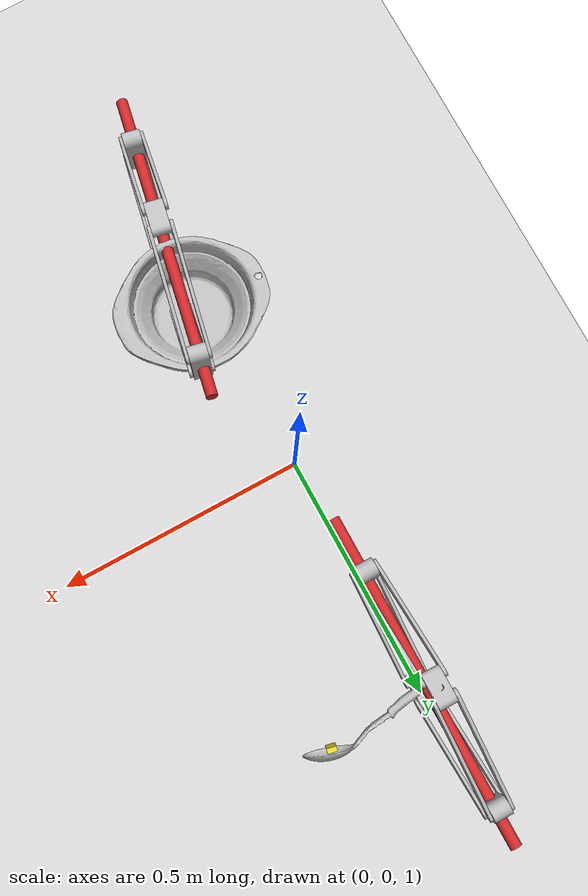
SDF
<?xml version='1.0'?>
<sdf version="1.6">
    <world name="big_bowl_serving_spoon_v">

        <include>
            <uri>model://sun</uri>
        </include>

        <include>
            <uri>model://ground_plane</uri>
        </include>

        <include>
            <uri>model://b_serving_spoon</uri>
            <pose>0.112572 0.508131 0.984633 1.382835 0.015399 0.080779</pose>
        </include>

        <include>
            <uri>model://butter_box</uri>
            <pose>0.198795 0.509112 0.981783 3.036336 1.368174 -1.866245</pose>
            <plugin name="stick" filename="libStickPlugin.so">
              <parentLinkName>link</parentLinkName>
              <childLinkName>b_serving_spoon::link</childLinkName>
              <force>5</force>
            </plugin>
        </include>

        <include>
            <uri>model://b_big_bowl</uri>
            <pose>0.024164 -0.383989 0.959287 -0.017186 -0.000884 -0.101566</pose>
        </include>

        <!-- Left Gripper -->
        <include>
            <uri>model://gripper</uri>
            <name>left_ee</name>
            <pose>0 0.5 1 0 -1.57 0</pose>

            <plugin name="l_force_controller" filename="libvelocity_controller_plugin.so">
              <linkName>link</linkName>
              <topicName>set_l_ee_twist</topicName>
              <gains>
                <linear>
                  <P>100.0</P>
                  <I>0.0</I>
                  <D>25.0</D>
                </linear>
                <angular>
                  <P>100.0</P>
                  <I>0.0</I>
                  <D>25.0</D>
                </angular>
              </gains>
            </plugin>

            <plugin name="l_grip" filename="libGripPlugin.so">
              <parentLinkName>link</parentLinkName>
              <childLinkName>b_serving_spoon::link</childLinkName>
              <relativePose>0.112571612 0.00813051871955 -0.0153673645109 1.3828344221275815 0.015398730956486372 0.08077832485708741</relativePose>
            </plugin>

        </include>

        <!-- Right Gripper -->
        <include>
            <uri>model://gripper</uri>
            <name>right_ee</name>
            <pose>0 -0.5 1 1.547368 1.402341 1.343703</pose>

            <plugin name="r_force_controller" filename="libvelocity_controller_plugin.so">
              <linkName>link</linkName>
              <topicName>set_r_ee_twist</topicName>
              <gains>
                <linear>
                  <P>100.0</P>
                  <I>0.0</I>
                  <D>25.0</D>
                </linear>
                <angular>
                  <P>100.0</P>
                  <I>0.0</I>
                  <D>25.0</D>
                </angular>
              </gains>
            </plugin>

            <plugin name="r_grip" filename="libGripPlugin.so">
              <parentLinkName>link</parentLinkName>
              <childLinkName>b_big_bowl::link</childLinkName>
              <relativePose>0.06 0.11 0 -1.57 -1.35 1.3</relativePose>
            </plugin>

        </include>

        <plugin name="feature_visualization_plugin" filename="libgiskard_visualization_plugin.so"></plugin>

        <gui>
            <camera name='user_camera'>
                <pose>1.700789 1.175709 1.670612 0 0.375643 -2.675000</pose>
                <view_controller>orbit</view_controller>
            </camera>
        </gui>

    </world>
</sdf>

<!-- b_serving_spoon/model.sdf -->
<sdf version='1.6'>
	<model name='b_serving_spoon'>
		<static>false</static>
		<pose>0 0 0 0 0 0</pose>

		<link name='link'>
			<inertial>
			<mass>0.15</mass>
			<pose>0.0019638 -6.1791e-05 0.00018857 0 0 0</pose>
				<inertia>
					<ixx>0.0000075</ixx>
					<iyy>0.00112875</iyy>
					<izz>0.00112875</izz>
				</inertia>
			</inertial>
			<sensor name="tool_contact_sensor" type="contact">
				<always_on>true</always_on>
				<update_rate>30.0</update_rate>
				<contact>
					<collision>collision</collision>
				</contact>
				<plugin name="tool_bumper" filename="libgazebo_ros_bumper.so">
					<bumperTopicName>tool_contact_sensor_state</bumperTopicName>
					<frameName>world</frameName>
				</plugin>
			</sensor>
			<collision name='collision'>
				<geometry>
					<mesh>
						<uri>model://b_serving_spoon/b_serving_spoon.dae</uri>
					</mesh>
				</geometry>
				<surface>
					<friction>
						<ode>
							<mu>0.2</mu>
							<mu2>0.2</mu2>
						</ode>
					</friction>
				</surface>
			</collision>
			<visual name='visual'>
				<geometry>
					<mesh>
						<uri>model://b_serving_spoon/b_serving_spoon.dae</uri>
					</mesh>
				</geometry>
			</visual>
		</link>
	</model>
</sdf>

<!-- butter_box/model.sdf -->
<sdf version='1.6'>
    <model name='butter_box'>
        <static>false</static>
        <pose>0 0 0 0 0 0</pose>
        <link name='link'>
            <pose>0 0 0 0 0 0</pose>
            <inertial>
                <mass>0.001</mass>
                <pose>0 0 0 0 0 0</pose>
                <inertia>
                    <ixx>0.00000004167</ixx>
                    <iyy>0.00000008333</iyy>
                    <izz>0.00000010833</izz>
                    <ixy>0</ixy>
                    <ixz>0</ixz>
                    <iyz>0</iyz>
                </inertia>
            </inertial>
            <collision name='collision'>
                <geometry>
                    <box>
                        <size>0.03 0.02 0.01</size>
                    </box>
                </geometry>
                <surface>
                    <friction>
                        <ode>
                            <mu>0.2</mu>
                            <mu2>0.2</mu2>
                        </ode>
                    </friction>
                </surface>
            </collision>
            <visual name='visual'>
                <geometry>
                    <box>
                        <size>0.03 0.02 0.01</size>
                    </box>
                </geometry>
                <material>
                    <script>
                        <name>Gazebo/Yellow</name>
                        <uri>file://media/materials/scripts/gazebo.material</uri>
                    </script>
                </material>
            </visual>
        </link>
    </model>
</sdf>

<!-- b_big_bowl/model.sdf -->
<sdf version='1.6'>
	<model name='b_big_bowl'>
		<static>false</static>
		<pose>0 0 0 0 0 0</pose>

		<link name='link'>
			<inertial>
			<mass>0.35</mass>
			<pose>-0.0022966 -0.0039142 0.0041527 0 0 0</pose>
				<inertia>
					<ixx>0.0009479167</ixx>
					<iyy>0.0009479167</iyy>
					<izz>0.00175</izz>
				</inertia>
			</inertial>
			<collision name='collision'>
				<geometry>
					<mesh>
						<uri>model://b_big_bowl/b_big_bowl.dae</uri>
					</mesh>
				</geometry>
				<surface>
					<friction>
						<ode>
							<mu>0.2</mu>
							<mu2>0.2</mu2>
						</ode>
					</friction>
				</surface>
			</collision>
			<visual name='visual'>
				<geometry>
					<mesh>
						<uri>model://b_big_bowl/b_big_bowl.dae</uri>
					</mesh>
				</geometry>
			</visual>
		</link>
	</model>
</sdf>

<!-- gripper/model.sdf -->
<sdf version="1.6">
  <model name='gripper'>
    <static>False</static>
    <link name='left_long_joint'>
      <pose>0 0.25 0.019 -1.57 0 0</pose>
      <inertial>
        <pose>-0.000104 -0.000077 -0.0 0 0 0</pose>
        <mass>0.3186</mass>
        <inertia>
          <ixx>7.938e-05</ixx>
          <ixy>0</ixy>
          <ixz>0</ixz>
          <iyy>3.3715e-04</iyy>
          <iyz>0</iyz>
          <izz>3.3664e-04</izz>
        </inertia>
      </inertial>
      <collision name="collision">
        <geometry>
          <mesh>
            <uri>model://gripper/meshes/joint_long.dae</uri>
            <scale>1 1 1</scale>
          </mesh>
        </geometry>
        <surface>
          <contact>
            <collide_bitmask>0xffff</collide_bitmask>
          </contact>
          <friction>
            <ode>
              <mu>100</mu>
              <mu2>50</mu2>
            </ode>
          </friction>
        </surface>
      </collision>
      <visual name='visual'>
        <geometry>
          <mesh>
            <uri>model://gripper/meshes/joint_long.dae</uri>
            <scale>1 1 1</scale>
          </mesh>
        </geometry>
      </visual>
    </link>
    <link name='right_long_joint'>
      <pose>0 -0.25 0.019 -1.57 0 0</pose>
      <collision name="collision">
        <geometry>
          <mesh>
            <uri>model://gripper/meshes/joint_long.dae</uri>
            <scale>1 1 1</scale>
          </mesh>
        </geometry>
        <surface>
          <contact>
            <collide_bitmask>0xffff</collide_bitmask>
          </contact>
          <friction>
            <ode>
              <mu>100</mu>
              <mu2>50</mu2>
            </ode>
          </friction>
        </surface>
      </collision>
      <visual name='visual'>
        <geometry>
          <mesh>
            <uri>model://gripper/meshes/joint_long.dae</uri>
            <scale>1 1 1</scale>
          </mesh>
        </geometry>
      </visual>
      <inertial>
        <pose>-0.000104 -0.000077 -0.0 0 0 0</pose>
        <mass>0.3186</mass>
        <inertia>
          <ixx>7.938e-05</ixx>
          <ixy>0</ixy>
          <ixz>0</ixz>
          <iyy>3.3715e-04</iyy>
          <iyz>0</iyz>
          <izz>3.3664e-04</izz>
        </inertia>
      </inertial>
    </link>
    <link name='left_short_joint'>
      <pose>0.14 0 0 1.57 0 1.57</pose>
      <collision name="collision">
        <geometry>
          <mesh>
            <uri>model://gripper/meshes/joint_short.dae</uri>
            <scale>1 1 1</scale>
          </mesh>
        </geometry>
        <surface>
          <contact>
            <collide_bitmask>0xffff</collide_bitmask>
          </contact>
          <friction>
            <ode>
              <mu>100</mu>
              <mu2>50</mu2>
            </ode>
          </friction>
        </surface>
      </collision>
      <visual name='visual'>
        <geometry>
          <mesh>
            <uri>model://gripper/meshes/joint_short.dae</uri>
            <scale>1 1 1</scale>
          </mesh>
        </geometry>
      </visual>
      <inertial>
        <pose>0.0 0.01896 -0.000157 0 0 0</pose>
        <mass>0.1512</mass>
        <inertia>
          <ixx>2.689e-05</ixx>
          <ixy>-0</ixy>
          <ixz>-0</ixz>
          <iyy>6.696e-05</iyy>
          <iyz>0</iyz>
          <izz>7.741e-05</izz>
        </inertia>
      </inertial>
    </link>
    <link name='right_short_joint'>
      <pose>-0.14 0 0 1.57 0 1.57</pose>
      <collision name="collision">
        <geometry>
          <mesh>
            <uri>model://gripper/meshes/joint_short.dae</uri>
            <scale>1 1 1</scale>
          </mesh>
        </geometry>
        <surface>
          <contact>
            <collide_bitmask>0xffff</collide_bitmask>
          </contact>
          <friction>
            <ode>
              <mu>100</mu>
              <mu2>50</mu2>
            </ode>
          </friction>
        </surface>
      </collision>
      <visual name='visual'>
        <geometry>
          <mesh>
            <uri>model://gripper/meshes/joint_short.dae</uri>
            <scale>1 1 1</scale>
          </mesh>
        </geometry>
      </visual>
      <inertial>
        <pose>0.0 0.01896 -0.000157 0 0 0</pose>
        <mass>0.1512</mass>
        <inertia>
          <ixx>2.689e-05</ixx>
          <ixy>-0</ixy>
          <ixz>-0</ixz>
          <iyy>6.696e-05</iyy>
          <iyz>0</iyz>
          <izz>7.741e-05</izz>
        </inertia>
      </inertial>
    </link>
    <link name='flat_plate1'>
      <pose>0.0456 0.2565 0.038 1.57 0 -1.132</pose>
      <collision name="collision">
        <geometry>
          <mesh>
            <uri>model://gripper/meshes/flat_plate.dae</uri>
            <scale>1 1 1</scale>
          </mesh>
        </geometry>
        <surface>
          <contact>
            <collide_bitmask>0xffff</collide_bitmask>
          </contact>
          <friction>
            <ode>
              <mu>100</mu>
              <mu2>50</mu2>
            </ode>
          </friction>
        </surface>
      </collision>
      <visual name='visual'>
        <geometry>
          <mesh>
            <uri>model://gripper/meshes/flat_plate.dae</uri>
            <scale>1 1 1</scale>
          </mesh>
        </geometry>
      </visual>
      <inertial>
        <pose>0.125 0.00325 0.012500 0 0 0</pose>
        <mass>0.0651</mass>
        <inertia>
          <ixx>3.689e-06</ixx>
          <ixy>-0</ixy>
          <ixz>-0</ixz>
          <iyy>3.797e-04</iyy>
          <iyz>0</iyz>
          <izz>3.764e-04</izz>
        </inertia>
      </inertial>
    </link>
    <link name='flat_plate2'>
      <pose>-0.1289 -0.02 0.038 1.57 0 -1.132</pose>
      <collision name="collision">
        <geometry>
          <mesh>
            <uri>model://gripper/meshes/flat_plate.dae</uri>
            <scale>1 1 1</scale>
          </mesh>
        </geometry>
        <surface>
          <contact>
            <collide_bitmask>0xffff</collide_bitmask>
          </contact>
          <friction>
            <ode>
              <mu>100</mu>
              <mu2>50</mu2>
            </ode>
          </friction>
        </surface>
      </collision>
      <visual name='visual'>
        <geometry>
          <mesh>
            <uri>model://gripper/meshes/flat_plate.dae</uri>
            <scale>1 1 1</scale>
          </mesh>
        </geometry>
      </visual>
      <inertial>
        <pose>0.125 0.00325 0.012500 0 0 0</pose>
        <mass>0.0651</mass>
        <inertia>
          <ixx>3.689e-06</ixx>
          <ixy>-0</ixy>
          <ixz>-0</ixz>
          <iyy>3.797e-04</iyy>
          <iyz>0</iyz>
          <izz>3.764e-04</izz>
        </inertia>
      </inertial>
    </link>
    <link name='flat_plate3'>
      <pose>-0.1515 0.031 0.038 1.57 0 1.132</pose>
      <collision name="collision">
        <geometry>
          <mesh>
            <uri>model://gripper/meshes/flat_plate.dae</uri>
            <scale>1 1 1</scale>
          </mesh>
        </geometry>
        <surface>
          <contact>
            <collide_bitmask>0xffff</collide_bitmask>
          </contact>
          <friction>
            <ode>
              <mu>100</mu>
              <mu2>50</mu2>
            </ode>
          </friction>
        </surface>
      </collision>
      <visual name='visual'>
        <geometry>
          <mesh>
            <uri>model://gripper/meshes/flat_plate.dae</uri>
            <scale>1 1 1</scale>
          </mesh>
        </geometry>
      </visual>
      <inertial>
        <pose>0.125 0.00325 0.012500 0 0 0</pose>
        <mass>0.0651</mass>
        <inertia>
          <ixx>3.689e-06</ixx>
          <ixy>-0</ixy>
          <ixz>-0</ixz>
          <iyy>3.797e-04</iyy>
          <iyz>0</iyz>
          <izz>3.764e-04</izz>
        </inertia>
      </inertial>
    </link>
    <link name='flat_plate4'>
      <pose>0.022 -0.245 0.038 1.57 0 1.132</pose>
      <collision name="collision">
        <geometry>
          <mesh>
            <uri>model://gripper/meshes/flat_plate.dae</uri>
            <scale>1 1 1</scale>
          </mesh>
        </geometry>
        <surface>
          <contact>
            <collide_bitmask>0xffff</collide_bitmask>
          </contact>
          <friction>
            <ode>
              <mu>100</mu>
              <mu2>50</mu2>
            </ode>
          </friction>
        </surface>
      </collision>
      <visual name='visual'>
        <geometry>
          <mesh>
            <uri>model://gripper/meshes/flat_plate.dae</uri>
            <scale>1 1 1</scale>
          </mesh>
        </geometry>
      </visual>
      <inertial>
        <pose>0.125 0.00325 0.012500 0 0 0</pose>
        <mass>0.0651</mass>
        <inertia>
          <ixx>3.689e-06</ixx>
          <ixy>-0</ixy>
          <ixz>-0</ixz>
          <iyy>3.797e-04</iyy>
          <iyz>0</iyz>
          <izz>3.764e-04</izz>
        </inertia>
      </inertial>
    </link>

    <link name='flat_plate5'>
      <pose>0.0456 0.2565 -0.007 1.57 0 -1.132</pose>
      <collision name="collision">
        <geometry>
          <mesh>
            <uri>model://gripper/meshes/flat_plate.dae</uri>
            <scale>1 1 1</scale>
          </mesh>
        </geometry>
        <surface>
          <contact>
            <collide_bitmask>0xffff</collide_bitmask>
          </contact>
          <friction>
            <ode>
              <mu>100</mu>
              <mu2>50</mu2>
            </ode>
          </friction>
        </surface>
      </collision>
      <visual name='visual'>
        <geometry>
          <mesh>
            <uri>model://gripper/meshes/flat_plate.dae</uri>
            <scale>1 1 1</scale>
          </mesh>
        </geometry>
      </visual>
      <inertial>
        <pose>0.125 0.00325 0.012500 0 0 0</pose>
        <mass>0.0651</mass>
        <inertia>
          <ixx>3.689e-06</ixx>
          <ixy>-0</ixy>
          <ixz>-0</ixz>
          <iyy>3.797e-04</iyy>
          <iyz>0</iyz>
          <izz>3.764e-04</izz>
        </inertia>
      </inertial>
    </link>
    <link name='flat_plate6'>
      <pose>-0.1289 -0.02 -0.007 1.57 0 -1.132</pose>
      <collision name="collision">
        <geometry>
          <mesh>
            <uri>model://gripper/meshes/flat_plate.dae</uri>
            <scale>1 1 1</scale>
          </mesh>
        </geometry>
        <surface>
          <contact>
            <collide_bitmask>0xffff</collide_bitmask>
          </contact>
          <friction>
            <ode>
              <mu>100</mu>
              <mu2>50</mu2>
            </ode>
          </friction>
        </surface>
      </collision>
      <visual name='visual'>
        <geometry>
          <mesh>
            <uri>model://gripper/meshes/flat_plate.dae</uri>
            <scale>1 1 1</scale>
          </mesh>
        </geometry>
      </visual>
      <inertial>
        <pose>0.125 0.00325 0.012500 0 0 0</pose>
        <mass>0.0651</mass>
        <inertia>
          <ixx>3.689e-06</ixx>
          <ixy>-0</ixy>
          <ixz>-0</ixz>
          <iyy>3.797e-04</iyy>
          <iyz>0</iyz>
          <izz>3.764e-04</izz>
        </inertia>
      </inertial>
    </link>
    <link name='flat_plate7'>
      <pose>-0.1515 0.031 -0.007 1.57 0 1.132</pose>
      <collision name="collision">
        <geometry>
          <mesh>
            <uri>model://gripper/meshes/flat_plate.dae</uri>
            <scale>1 1 1</scale>
          </mesh>
        </geometry>
        <surface>
          <contact>
            <collide_bitmask>0xffff</collide_bitmask>
          </contact>
          <friction>
            <ode>
              <mu>100</mu>
              <mu2>50</mu2>
            </ode>
          </friction>
        </surface>
      </collision>
      <visual name='visual'>
        <geometry>
          <mesh>
            <uri>model://gripper/meshes/flat_plate.dae</uri>
            <scale>1 1 1</scale>
          </mesh>
        </geometry>
      </visual>
      <inertial>
        <pose>0.125 0.00325 0.012500 0 0 0</pose>
        <mass>0.0651</mass>
        <inertia>
          <ixx>3.689e-06</ixx>
          <ixy>-0</ixy>
          <ixz>-0</ixz>
          <iyy>3.797e-04</iyy>
          <iyz>0</iyz>
          <izz>3.764e-04</izz>
        </inertia>
      </inertial>
    </link>
    <link name='flat_plate8'>
      <pose>0.022 -0.245 -0.007 1.57 0 1.132</pose>
      <collision name="collision">
        <geometry>
          <mesh>
            <uri>model://gripper/meshes/flat_plate.dae</uri>
            <scale>1 1 1</scale>
          </mesh>
        </geometry>
        <surface>
          <contact>
            <collide_bitmask>0xffff</collide_bitmask>
          </contact>
          <friction>
            <ode>
              <mu>100</mu>
              <mu2>50</mu2>
            </ode>
          </friction>
        </surface>
      </collision>
      <visual name='visual'>
        <geometry>
          <mesh>
            <uri>model://gripper/meshes/flat_plate.dae</uri>
            <scale>1 1 1</scale>
          </mesh>
        </geometry>
      </visual>
      <inertial>
        <pose>0.125 0.00325 0.012500 0 0 0</pose>
        <mass>0.0651</mass>
        <inertia>
          <ixx>3.689e-06</ixx>
          <ixy>-0</ixy>
          <ixz>-0</ixz>
          <iyy>3.797e-04</iyy>
          <iyz>0</iyz>
          <izz>3.764e-04</izz>
        </inertia>
      </inertial>
    </link>

    <link name='screw_rod'>
      <pose>-0.00015 -0.02 0.0153 0 1.57 1.57 </pose>
      <collision name="collision">
        <geometry>
          <cylinder>
            <radius>0.012</radius>
            <length>1</length>
          </cylinder>
        </geometry>
      </collision>
      <visual name="visual">
        <material>
          <script>
            <name>Gazebo/Red</name>
            <uri>file://media/materials/scripts/gazebo.material</uri>
          </script>
          <shader type='pixel'/>
        </material>
        <geometry>
          <cylinder>
            <radius>0.012</radius>
            <length>0.7</length>
          </cylinder>
        </geometry>
      </visual>
      <inertial>
        <pose>0 0 0.32263 0 1.57 0</pose>
        <mass>1.29</mass>
        <inertia>
          <ixx>1.8357e-04</ixx>
          <ixy>-0</ixy>
          <ixz>-0</ixz>
          <iyy>8.006e-02</iyy>
          <iyz>0</iyz>
          <izz>8.006e-02</izz>
        </inertia>
      </inertial>
    </link>

    <joint name="j1" type="revolute">
      <pose> 0.25 0 0.01 0 0 0</pose>
      <child>flat_plate1</child>
      <parent>left_short_joint</parent>
      <axis>
        <limit>
          <lower>-0.5</lower>
          <upper>0.1</upper>
        </limit>
        <xyz>0 1 0</xyz>
      </axis>
    </joint>
    <joint name="j2" type="revolute">
      <pose> 0 0 0.01 0 0 0</pose>
      <child>flat_plate1</child>
      <parent>left_long_joint</parent>
      <axis>
        <limit>
          <lower>-0.5</lower>
          <upper>0.1</upper>
        </limit>
        <xyz>0 1 0</xyz>
      </axis>
    </joint>
    <joint name="j3" type="revolute">
      <pose> 0 0 0.01 0 0 0</pose>
      <child>flat_plate2</child>
      <parent>right_short_joint</parent>
      <axis>
        <limit>
          <lower>-0.5</lower>
          <upper>0.1</upper>
        </limit>
        <xyz>0 1 0</xyz>
      </axis>
    </joint>
    <joint name="j4" type="revolute">
      <pose> 0.25 0 0.01 0 0 0</pose>
      <child>flat_plate2</child>
      <parent>right_long_joint</parent>
      <axis>
        <limit>
          <lower>-0.5</lower>
          <upper>0.1</upper>
        </limit>
        <xyz>0 1 0</xyz>
      </axis>
    </joint>
    <joint name="j5" type="revolute">
      <pose> 0 0 0.01 0 0 0</pose>
      <child>flat_plate3</child>
      <parent>right_short_joint</parent>
      <axis>
        <limit>
          <lower>-0.5</lower>
          <upper>0.1</upper>
        </limit>
        <xyz>0 1 0</xyz>
      </axis>
    </joint>
    <joint name="j6" type="revolute">
      <pose> 0.25 0 0.01 0 0 0</pose>
      <child>flat_plate3</child>
      <parent>left_long_joint</parent>
      <axis>
        <limit>
          <lower>-0.5</lower>
          <upper>0.1</upper>
        </limit>
        <xyz>0 1 0</xyz>
      </axis>
    </joint>
    <joint name="j7" type="revolute">
      <pose> 0.25 0 0.01 0 0 0</pose>
      <child>flat_plate4</child>
      <parent>left_short_joint</parent>
      <axis>
        <limit>
          <lower>-0.5</lower>
          <upper>0.1</upper>
        </limit>
        <xyz>0 1 0</xyz>
      </axis>
    </joint>
    <joint name="j8" type="revolute">
      <pose> 0 0 0.01 0 0 0</pose>
      <child>flat_plate4</child>
      <parent>right_long_joint</parent>
      <axis>
        <limit>
          <lower>-0.5</lower>
          <upper>0.1</upper>
        </limit>
        <xyz>0 1 0</xyz>
      </axis>
    </joint>

    <joint name="j9" type="revolute">
      <pose> 0.25 0 0.01 0 0 0</pose>
      <child>flat_plate5</child>
      <parent>left_short_joint</parent>
      <axis>
        <limit>
          <lower>-0.5</lower>
          <upper>0.1</upper>
        </limit>
        <xyz>0 -1 0</xyz>
      </axis>
    </joint>
    <joint name="j10" type="revolute">
      <pose> 0 0 0.01 0 0 0</pose>
      <child>flat_plate5</child>
      <parent>left_long_joint</parent>
      <axis>
        <limit>
          <lower>-0.5</lower>
          <upper>0.1</upper>
        </limit>
        <xyz>0 -1 0</xyz>
      </axis>
    </joint>
    <joint name="j11" type="revolute">
      <pose> 0 0 0.01 0 0 0</pose>
      <child>flat_plate6</child>
      <parent>right_short_joint</parent>
      <axis>
        <limit>
          <lower>-0.5</lower>
          <upper>0.1</upper>
        </limit>
        <xyz>0 -1 0</xyz>
      </axis>
    </joint>
    <joint name="j12" type="revolute">
      <pose> 0.25 0 0.01 0 0 0</pose>
      <child>flat_plate6</child>
      <parent>right_long_joint</parent>
      <axis>
        <limit>
          <lower>-0.5</lower>
          <upper>0.1</upper>
        </limit>
        <xyz>0 -1 0</xyz>
      </axis>
    </joint>
    <joint name="j13" type="revolute">
      <pose> 0 0 0.01 0 0 0</pose>
      <child>flat_plate7</child>
      <parent>right_short_joint</parent>
      <axis>
        <limit>
          <lower>-0.5</lower>
          <upper>0.1</upper>
        </limit>
        <xyz>0 -1 0</xyz>
      </axis>
    </joint>
    <joint name="j14" type="revolute">
      <pose> 0.25 0 0.01 0 0 0</pose>
      <child>flat_plate7</child>
      <parent>left_long_joint</parent>
      <axis>
        <limit>
          <lower>-0.5</lower>
          <upper>0.1</upper>
        </limit>
        <xyz>0 -1 0</xyz>
      </axis>
    </joint>
    <joint name="j15" type="revolute">
      <pose> 0.25 0 0.01 0 0 0</pose>
      <child>flat_plate8</child>
      <parent>left_short_joint</parent>
      <axis>
        <limit>
          <lower>-0.5</lower>
          <upper>0.1</upper>
        </limit>
        <xyz>0 -1 0</xyz>
      </axis>
    </joint>
    <joint name="j16" type="revolute">
      <pose> 0 0 0.01 0 0 0</pose>
      <child>flat_plate8</child>
      <parent>right_long_joint</parent>
      <axis>
        <limit>
          <lower>-0.5</lower>
          <upper>0.1</upper>
        </limit>
        <xyz>0 -1 0</xyz>
      </axis>
    </joint>
    <joint name="piston_joint_1" type ="screw">
      <pose>0 0.004 0 0 0 0</pose>
      <parent>screw_rod</parent>
      <child>right_long_joint</child>
      <axis>
        <xyz>0 1 0</xyz>
      </axis>
      <thread_pitch>100</thread_pitch>
    </joint>

    <joint name="piston_joint_2" type ="screw">
      <pose>0 0.004 0 0 0 0</pose>
      <parent>screw_rod</parent>
      <child>left_long_joint</child>
      <axis>
        <xyz>0 1 0</xyz>
      </axis>
      <thread_pitch>-100</thread_pitch>
    </joint>

    <plugin name="gripper_plugin" filename="libiarc_gripper_plugin.so">
      <namespace>firefly</namespace>
      <link_name>screw_rod</link_name>
      <torque_magnitude>1.5</torque_magnitude>
    </plugin>
  </model>
</sdf>
